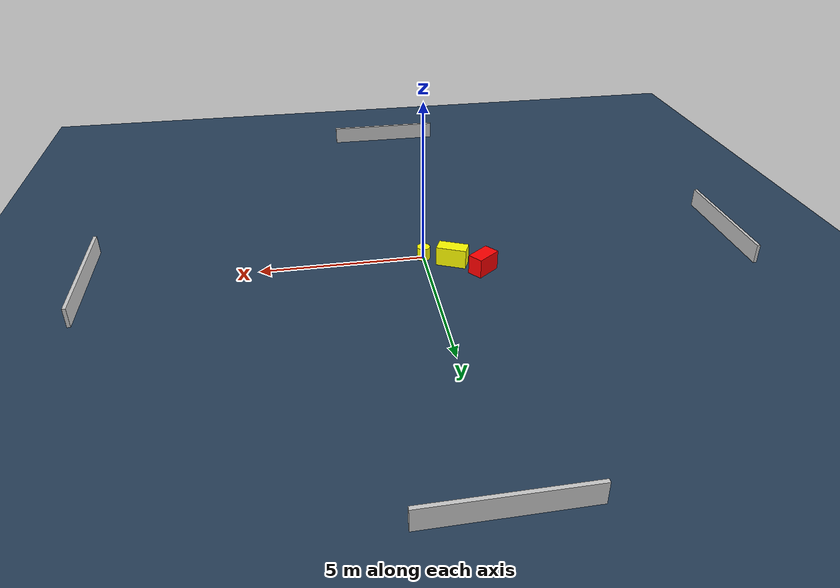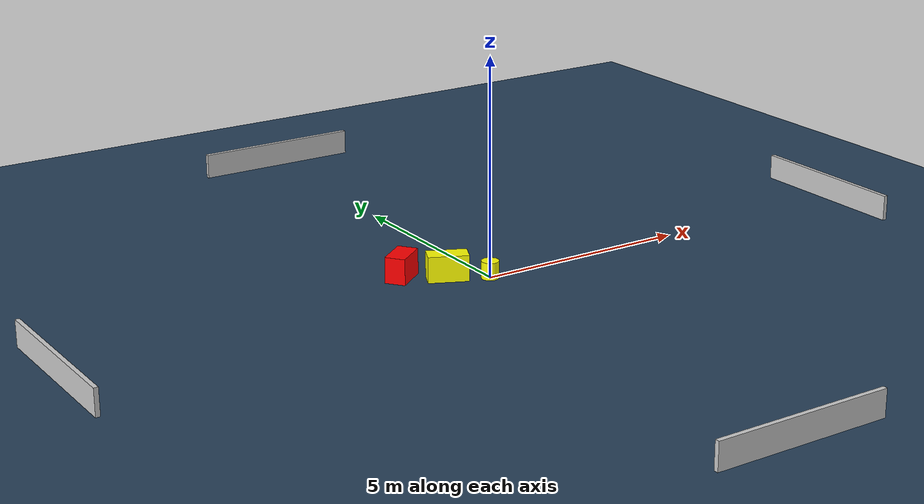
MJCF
<?xml version="1.0" ?>
<mujoco model="generated_environment">
  <option timestep="0.01" integrator="RK4" cone="elliptic"/>
  <default>
    <geom density="1"/>
  </default>
  <asset>
    <texture builtin="gradient" height="3072" name="skybox" rgb1="0.3 0.5 0.7" rgb2="0 0 0" type="skybox" width="512"/>
    <texture builtin="checker" height="300" name="groundplane" rgb1="0.2 0.3 0.4" rgb2="0.1 0.2 0.3" type="2d" width="300"/>
    <material name="groundplane" reflectance="0.2" texrepeat="5 5" texture="groundplane"/>
  </asset>
  <worldbody>
    <light dir="0 0 -1" directional="true" pos="0 0 1.5"/>
    <geom condim="3" friction="0.5 0.005 0.001" material="groundplane" name="floor" pos="0 0 0" size="0 0 0.05" type="plane"/>
    <body name="walls">
      <geom name="wall_1" condim="4" pos="-10.0 0.0 0.3" rgba="0.800000011920929 0.800000011920929 0.800000011920929 1.0" size="0.05 2.0 0.3" type="box"/>
      <geom name="wall_2" condim="4" pos="10.0 0.0 0.3" rgba="0.800000011920929 0.800000011920929 0.800000011920929 1.0" size="0.05 2.0 0.3" type="box"/>
      <geom name="wall_3" condim="4" pos="0.0 -10.0 0.3" rgba="0.800000011920929 0.800000011920929 0.800000011920929 1.0" size="2.0 0.05 0.3" type="box"/>
      <geom name="wall_4" condim="4" pos="0.0 10.0 0.3" rgba="0.800000011920929 0.800000011920929 0.800000011920929 1.0" size="2.0 0.05 0.3" type="box"/>
    </body>
    <body name="robot">
      <joint name="joint_x" type="slide" pos="0 0 0" axis="1 0 0"/>
      <joint name="joint_y" type="slide" pos="0 0 0" axis="0 1 0"/>
      <geom name="robot" type="cylinder" pos="0.0 0.0 0.2" size="0.2 0.2 0.0" mass="5.0" friction="1.0 0.005 0.0001" condim="4" rgba="1.0 1.0 0.0 1.0"/>
    </body>
    <body name="obstacle_1_movable">
      <geom name="obstacle_1_movable" condim="4" pos="-0.8180345807469291 0.46144135694472366 0.3" euler="0 0 155.2541201848993" friction="0.0 0.005 0.001" rgba="1.0 1.0 0.0 1.0" size="0.45801208773379426 0.2235222111586238 0.3" type="box" mass="0.1"/>
      <joint type="free"/>
    </body>
    <body name="obstacle_2_static">
      <geom name="obstacle_2_static" condim="4" pos="-1.6414734246349907 1.039162445590919 0.3" euler="0 0 217.25955662641636" friction="0.0 0.005 0.001" rgba="1.0 0.0 0.0 1.0" size="0.3954711216766885 0.23492679200018457 0.3" type="box"/>
    </body>
  </worldbody>
  <actuator>
    <motor name="actuator_x" joint="joint_x" gear="1" ctrlrange="-1 1"/>
    <motor name="actuator_y" joint="joint_y" gear="1" ctrlrange="-1 1"/>
  </actuator>
</mujoco>
